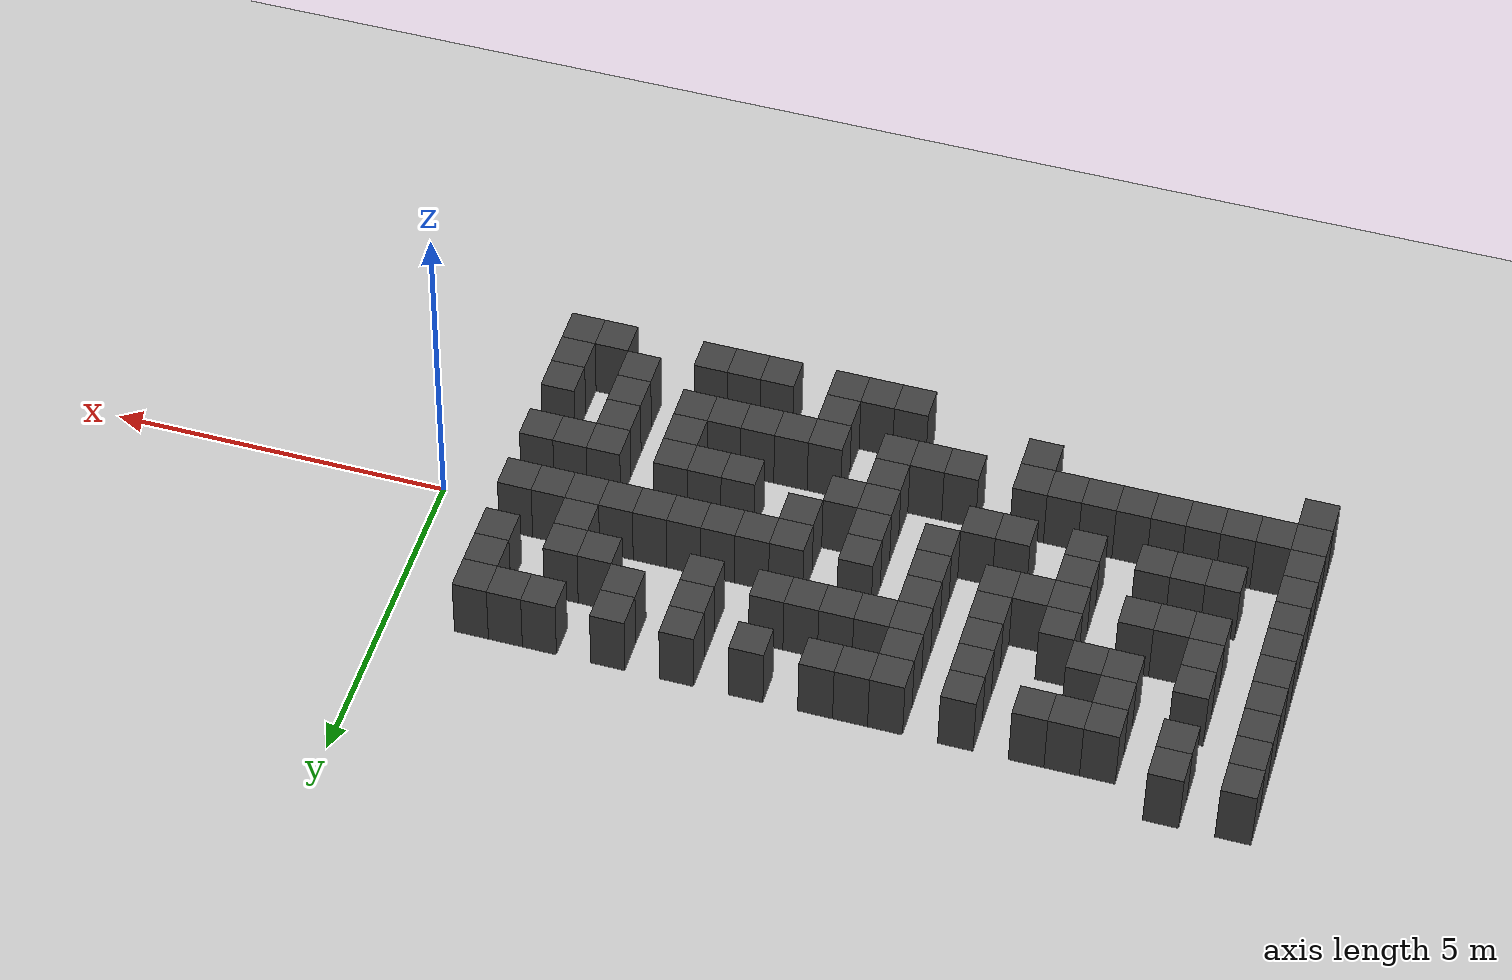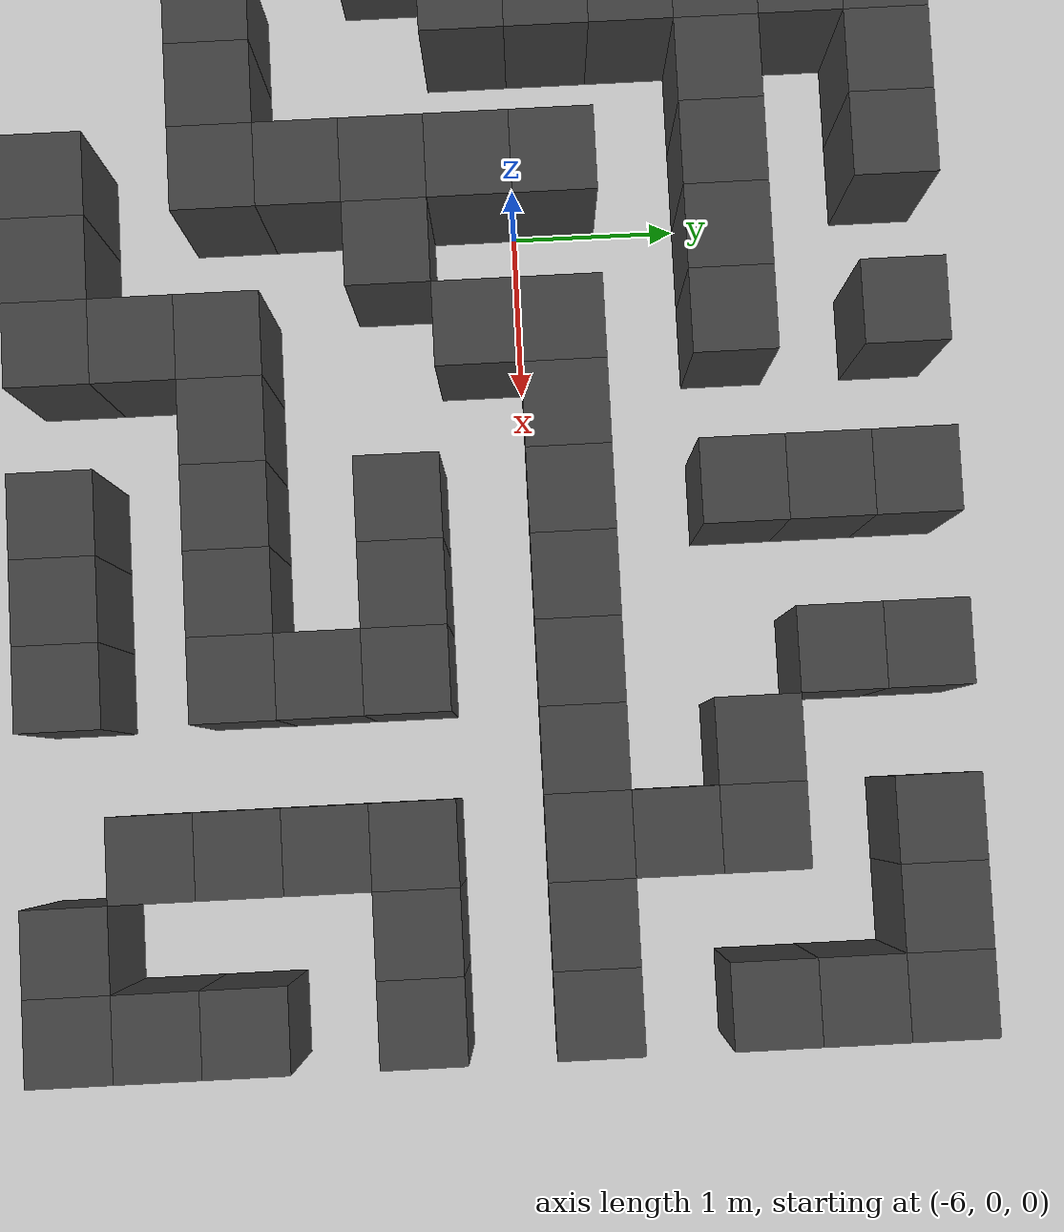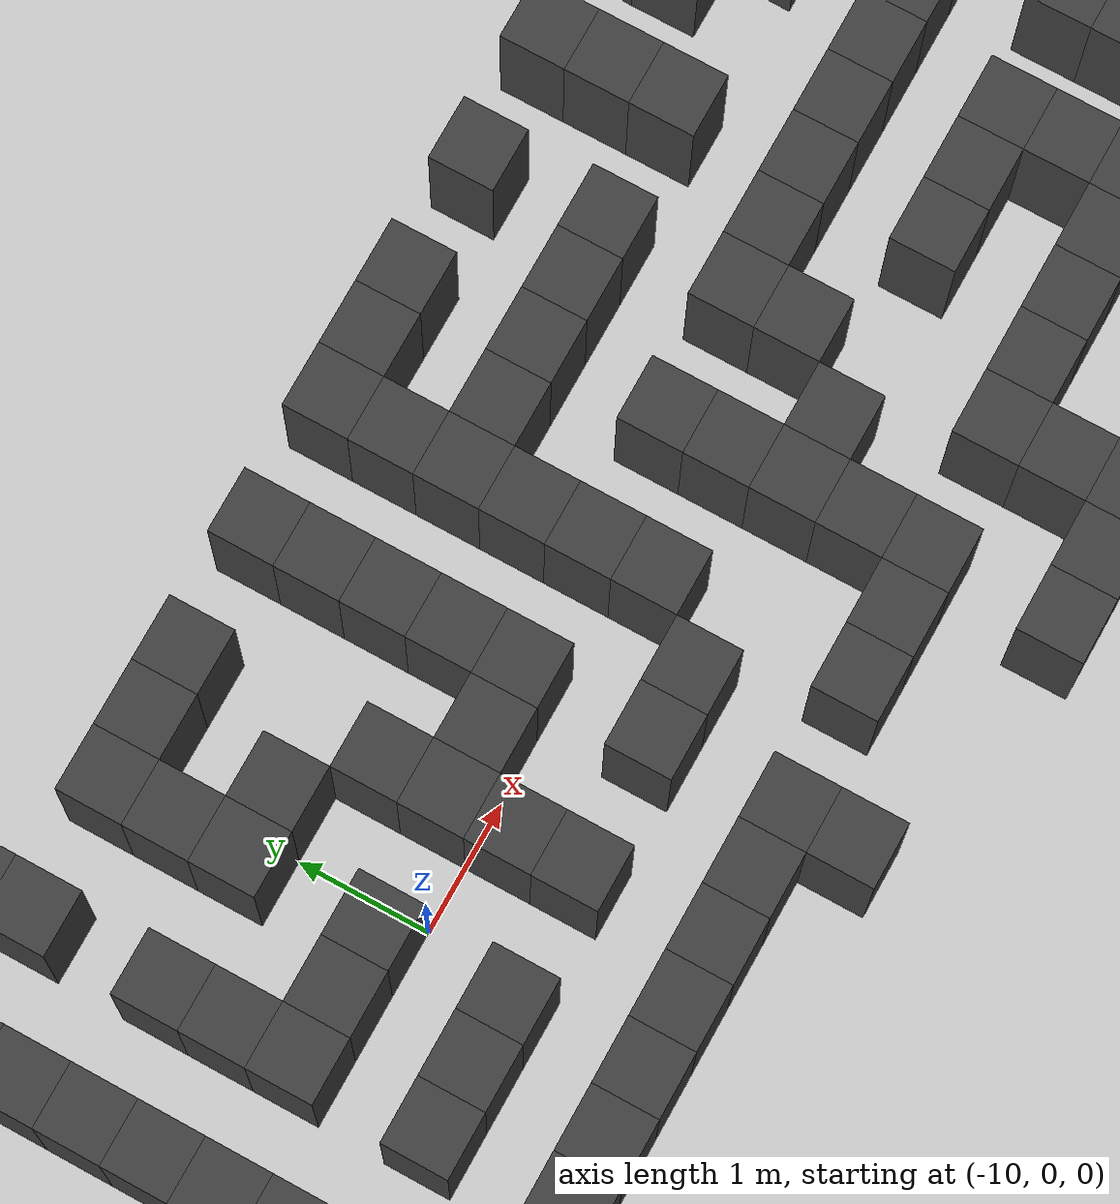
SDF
<sdf version="1.7">
 <world name="map_18313">
  <model name="ground_plane">
   <static>true</static>
   <link name="link">
    <collision name="collision">
     <geometry><plane><normal>0 0 1</normal><size>200 200</size></plane></geometry>
    </collision>
    <visual name="visual">
     <geometry><plane><normal>0 0 1</normal><size>200 200</size></plane></geometry>
     <material><ambient>0.8 0.8 0.8 1</ambient><diffuse>0.8 0.8 0.8 1</diffuse></material>
    </visual>
   </link>
  </model>
  <model name="maze_environment">
   <static>true</static>
   <link name="wall_496">
    <pose>-12.250 2.750 0.500 0 0 0</pose>
    <collision name="col"><geometry><box><size>0.5 0.5 1.0</size></box></geometry></collision>
    <visual name="vis">
     <geometry><box><size>0.5 0.5 1.0</size></box></geometry>
     <material><ambient>0.15 0.15 0.15 1</ambient><diffuse>0.25 0.25 0.25 1</diffuse></material>
    </visual>
   </link>
   <link name="wall_497">
    <pose>-11.250 2.750 0.500 0 0 0</pose>
    <collision name="col"><geometry><box><size>0.5 0.5 1.0</size></box></geometry></collision>
    <visual name="vis">
     <geometry><box><size>0.5 0.5 1.0</size></box></geometry>
     <material><ambient>0.15 0.15 0.15 1</ambient><diffuse>0.25 0.25 0.25 1</diffuse></material>
    </visual>
   </link>
   <link name="wall_512">
    <pose>-12.250 2.250 0.500 0 0 0</pose>
    <collision name="col"><geometry><box><size>0.5 0.5 1.0</size></box></geometry></collision>
    <visual name="vis">
     <geometry><box><size>0.5 0.5 1.0</size></box></geometry>
     <material><ambient>0.15 0.15 0.15 1</ambient><diffuse>0.25 0.25 0.25 1</diffuse></material>
    </visual>
   </link>
   <link name="wall_513">
    <pose>-11.250 2.250 0.500 0 0 0</pose>
    <collision name="col"><geometry><box><size>0.5 0.5 1.0</size></box></geometry></collision>
    <visual name="vis">
     <geometry><box><size>0.5 0.5 1.0</size></box></geometry>
     <material><ambient>0.15 0.15 0.15 1</ambient><diffuse>0.25 0.25 0.25 1</diffuse></material>
    </visual>
   </link>
   <link name="wall_514">
    <pose>-10.250 2.250 0.500 0 0 0</pose>
    <collision name="col"><geometry><box><size>0.5 0.5 1.0</size></box></geometry></collision>
    <visual name="vis">
     <geometry><box><size>0.5 0.5 1.0</size></box></geometry>
     <material><ambient>0.15 0.15 0.15 1</ambient><diffuse>0.25 0.25 0.25 1</diffuse></material>
    </visual>
   </link>
   <link name="wall_515">
    <pose>-9.750 2.250 0.500 0 0 0</pose>
    <collision name="col"><geometry><box><size>0.5 0.5 1.0</size></box></geometry></collision>
    <visual name="vis">
     <geometry><box><size>0.5 0.5 1.0</size></box></geometry>
     <material><ambient>0.15 0.15 0.15 1</ambient><diffuse>0.25 0.25 0.25 1</diffuse></material>
    </visual>
   </link>
   <link name="wall_516">
    <pose>-9.250 2.250 0.500 0 0 0</pose>
    <collision name="col"><geometry><box><size>0.5 0.5 1.0</size></box></geometry></collision>
    <visual name="vis">
     <geometry><box><size>0.5 0.5 1.0</size></box></geometry>
     <material><ambient>0.15 0.15 0.15 1</ambient><diffuse>0.25 0.25 0.25 1</diffuse></material>
    </visual>
   </link>
   <link name="wall_517">
    <pose>-8.250 2.250 0.500 0 0 0</pose>
    <collision name="col"><geometry><box><size>0.5 0.5 1.0</size></box></geometry></collision>
    <visual name="vis">
     <geometry><box><size>0.5 0.5 1.0</size></box></geometry>
     <material><ambient>0.15 0.15 0.15 1</ambient><diffuse>0.25 0.25 0.25 1</diffuse></material>
    </visual>
   </link>
   <link name="wall_518">
    <pose>-7.250 2.250 0.500 0 0 0</pose>
    <collision name="col"><geometry><box><size>0.5 0.5 1.0</size></box></geometry></collision>
    <visual name="vis">
     <geometry><box><size>0.5 0.5 1.0</size></box></geometry>
     <material><ambient>0.15 0.15 0.15 1</ambient><diffuse>0.25 0.25 0.25 1</diffuse></material>
    </visual>
   </link>
   <link name="wall_519">
    <pose>-6.750 2.250 0.500 0 0 0</pose>
    <collision name="col"><geometry><box><size>0.5 0.5 1.0</size></box></geometry></collision>
    <visual name="vis">
     <geometry><box><size>0.5 0.5 1.0</size></box></geometry>
     <material><ambient>0.15 0.15 0.15 1</ambient><diffuse>0.25 0.25 0.25 1</diffuse></material>
    </visual>
   </link>
   <link name="wall_520">
    <pose>-6.250 2.250 0.500 0 0 0</pose>
    <collision name="col"><geometry><box><size>0.5 0.5 1.0</size></box></geometry></collision>
    <visual name="vis">
     <geometry><box><size>0.5 0.5 1.0</size></box></geometry>
     <material><ambient>0.15 0.15 0.15 1</ambient><diffuse>0.25 0.25 0.25 1</diffuse></material>
    </visual>
   </link>
   <link name="wall_521">
    <pose>-5.250 2.250 0.500 0 0 0</pose>
    <collision name="col"><geometry><box><size>0.5 0.5 1.0</size></box></geometry></collision>
    <visual name="vis">
     <geometry><box><size>0.5 0.5 1.0</size></box></geometry>
     <material><ambient>0.15 0.15 0.15 1</ambient><diffuse>0.25 0.25 0.25 1</diffuse></material>
    </visual>
   </link>
   <link name="wall_522">
    <pose>-4.250 2.250 0.500 0 0 0</pose>
    <collision name="col"><geometry><box><size>0.5 0.5 1.0</size></box></geometry></collision>
    <visual name="vis">
     <geometry><box><size>0.5 0.5 1.0</size></box></geometry>
     <material><ambient>0.15 0.15 0.15 1</ambient><diffuse>0.25 0.25 0.25 1</diffuse></material>
    </visual>
   </link>
   <link name="wall_523">
    <pose>-3.250 2.250 0.500 0 0 0</pose>
    <collision name="col"><geometry><box><size>0.5 0.5 1.0</size></box></geometry></collision>
    <visual name="vis">
     <geometry><box><size>0.5 0.5 1.0</size></box></geometry>
     <material><ambient>0.15 0.15 0.15 1</ambient><diffuse>0.25 0.25 0.25 1</diffuse></material>
    </visual>
   </link>
   <link name="wall_524">
    <pose>-2.250 2.250 0.500 0 0 0</pose>
    <collision name="col"><geometry><box><size>0.5 0.5 1.0</size></box></geometry></collision>
    <visual name="vis">
     <geometry><box><size>0.5 0.5 1.0</size></box></geometry>
     <material><ambient>0.15 0.15 0.15 1</ambient><diffuse>0.25 0.25 0.25 1</diffuse></material>
    </visual>
   </link>
   <link name="wall_525">
    <pose>-1.750 2.250 0.500 0 0 0</pose>
    <collision name="col"><geometry><box><size>0.5 0.5 1.0</size></box></geometry></collision>
    <visual name="vis">
     <geometry><box><size>0.5 0.5 1.0</size></box></geometry>
     <material><ambient>0.15 0.15 0.15 1</ambient><diffuse>0.25 0.25 0.25 1</diffuse></material>
    </visual>
   </link>
   <link name="wall_526">
    <pose>-1.250 2.250 0.500 0 0 0</pose>
    <collision name="col"><geometry><box><size>0.5 0.5 1.0</size></box></geometry></collision>
    <visual name="vis">
     <geometry><box><size>0.5 0.5 1.0</size></box></geometry>
     <material><ambient>0.15 0.15 0.15 1</ambient><diffuse>0.25 0.25 0.25 1</diffuse></material>
    </visual>
   </link>
   <link name="wall_545">
    <pose>-12.250 1.750 0.500 0 0 0</pose>
    <collision name="col"><geometry><box><size>0.5 0.5 1.0</size></box></geometry></collision>
    <visual name="vis">
     <geometry><box><size>0.5 0.5 1.0</size></box></geometry>
     <material><ambient>0.15 0.15 0.15 1</ambient><diffuse>0.25 0.25 0.25 1</diffuse></material>
    </visual>
   </link>
   <link name="wall_546">
    <pose>-10.250 1.750 0.500 0 0 0</pose>
    <collision name="col"><geometry><box><size>0.5 0.5 1.0</size></box></geometry></collision>
    <visual name="vis">
     <geometry><box><size>0.5 0.5 1.0</size></box></geometry>
     <material><ambient>0.15 0.15 0.15 1</ambient><diffuse>0.25 0.25 0.25 1</diffuse></material>
    </visual>
   </link>
   <link name="wall_547">
    <pose>-8.250 1.750 0.500 0 0 0</pose>
    <collision name="col"><geometry><box><size>0.5 0.5 1.0</size></box></geometry></collision>
    <visual name="vis">
     <geometry><box><size>0.5 0.5 1.0</size></box></geometry>
     <material><ambient>0.15 0.15 0.15 1</ambient><diffuse>0.25 0.25 0.25 1</diffuse></material>
    </visual>
   </link>
   <link name="wall_548">
    <pose>-7.250 1.750 0.500 0 0 0</pose>
    <collision name="col"><geometry><box><size>0.5 0.5 1.0</size></box></geometry></collision>
    <visual name="vis">
     <geometry><box><size>0.5 0.5 1.0</size></box></geometry>
     <material><ambient>0.15 0.15 0.15 1</ambient><diffuse>0.25 0.25 0.25 1</diffuse></material>
    </visual>
   </link>
   <link name="wall_549">
    <pose>-4.250 1.750 0.500 0 0 0</pose>
    <collision name="col"><geometry><box><size>0.5 0.5 1.0</size></box></geometry></collision>
    <visual name="vis">
     <geometry><box><size>0.5 0.5 1.0</size></box></geometry>
     <material><ambient>0.15 0.15 0.15 1</ambient><diffuse>0.25 0.25 0.25 1</diffuse></material>
    </visual>
   </link>
   <link name="wall_550">
    <pose>-3.250 1.750 0.500 0 0 0</pose>
    <collision name="col"><geometry><box><size>0.5 0.5 1.0</size></box></geometry></collision>
    <visual name="vis">
     <geometry><box><size>0.5 0.5 1.0</size></box></geometry>
     <material><ambient>0.15 0.15 0.15 1</ambient><diffuse>0.25 0.25 0.25 1</diffuse></material>
    </visual>
   </link>
   <link name="wall_551">
    <pose>-1.250 1.750 0.500 0 0 0</pose>
    <collision name="col"><geometry><box><size>0.5 0.5 1.0</size></box></geometry></collision>
    <visual name="vis">
     <geometry><box><size>0.5 0.5 1.0</size></box></geometry>
     <material><ambient>0.15 0.15 0.15 1</ambient><diffuse>0.25 0.25 0.25 1</diffuse></material>
    </visual>
   </link>
   <link name="wall_559">
    <pose>-12.250 1.250 0.500 0 0 0</pose>
    <collision name="col"><geometry><box><size>0.5 0.5 1.0</size></box></geometry></collision>
    <visual name="vis">
     <geometry><box><size>0.5 0.5 1.0</size></box></geometry>
     <material><ambient>0.15 0.15 0.15 1</ambient><diffuse>0.25 0.25 0.25 1</diffuse></material>
    </visual>
   </link>
   <link name="wall_560">
    <pose>-11.250 1.250 0.500 0 0 0</pose>
    <collision name="col"><geometry><box><size>0.5 0.5 1.0</size></box></geometry></collision>
    <visual name="vis">
     <geometry><box><size>0.5 0.5 1.0</size></box></geometry>
     <material><ambient>0.15 0.15 0.15 1</ambient><diffuse>0.25 0.25 0.25 1</diffuse></material>
    </visual>
   </link>
   <link name="wall_561">
    <pose>-10.250 1.250 0.500 0 0 0</pose>
    <collision name="col"><geometry><box><size>0.5 0.5 1.0</size></box></geometry></collision>
    <visual name="vis">
     <geometry><box><size>0.5 0.5 1.0</size></box></geometry>
     <material><ambient>0.15 0.15 0.15 1</ambient><diffuse>0.25 0.25 0.25 1</diffuse></material>
    </visual>
   </link>
   <link name="wall_562">
    <pose>-9.750 1.250 0.500 0 0 0</pose>
    <collision name="col"><geometry><box><size>0.5 0.5 1.0</size></box></geometry></collision>
    <visual name="vis">
     <geometry><box><size>0.5 0.5 1.0</size></box></geometry>
     <material><ambient>0.15 0.15 0.15 1</ambient><diffuse>0.25 0.25 0.25 1</diffuse></material>
    </visual>
   </link>
   <link name="wall_563">
    <pose>-8.250 1.250 0.500 0 0 0</pose>
    <collision name="col"><geometry><box><size>0.5 0.5 1.0</size></box></geometry></collision>
    <visual name="vis">
     <geometry><box><size>0.5 0.5 1.0</size></box></geometry>
     <material><ambient>0.15 0.15 0.15 1</ambient><diffuse>0.25 0.25 0.25 1</diffuse></material>
    </visual>
   </link>
   <link name="wall_564">
    <pose>-7.250 1.250 0.500 0 0 0</pose>
    <collision name="col"><geometry><box><size>0.5 0.5 1.0</size></box></geometry></collision>
    <visual name="vis">
     <geometry><box><size>0.5 0.5 1.0</size></box></geometry>
     <material><ambient>0.15 0.15 0.15 1</ambient><diffuse>0.25 0.25 0.25 1</diffuse></material>
    </visual>
   </link>
   <link name="wall_565">
    <pose>-6.750 1.250 0.500 0 0 0</pose>
    <collision name="col"><geometry><box><size>0.5 0.5 1.0</size></box></geometry></collision>
    <visual name="vis">
     <geometry><box><size>0.5 0.5 1.0</size></box></geometry>
     <material><ambient>0.15 0.15 0.15 1</ambient><diffuse>0.25 0.25 0.25 1</diffuse></material>
    </visual>
   </link>
   <link name="wall_566">
    <pose>-6.250 1.250 0.500 0 0 0</pose>
    <collision name="col"><geometry><box><size>0.5 0.5 1.0</size></box></geometry></collision>
    <visual name="vis">
     <geometry><box><size>0.5 0.5 1.0</size></box></geometry>
     <material><ambient>0.15 0.15 0.15 1</ambient><diffuse>0.25 0.25 0.25 1</diffuse></material>
    </visual>
   </link>
   <link name="wall_567">
    <pose>-5.750 1.250 0.500 0 0 0</pose>
    <collision name="col"><geometry><box><size>0.5 0.5 1.0</size></box></geometry></collision>
    <visual name="vis">
     <geometry><box><size>0.5 0.5 1.0</size></box></geometry>
     <material><ambient>0.15 0.15 0.15 1</ambient><diffuse>0.25 0.25 0.25 1</diffuse></material>
    </visual>
   </link>
   <link name="wall_568">
    <pose>-5.250 1.250 0.500 0 0 0</pose>
    <collision name="col"><geometry><box><size>0.5 0.5 1.0</size></box></geometry></collision>
    <visual name="vis">
     <geometry><box><size>0.5 0.5 1.0</size></box></geometry>
     <material><ambient>0.15 0.15 0.15 1</ambient><diffuse>0.25 0.25 0.25 1</diffuse></material>
    </visual>
   </link>
   <link name="wall_569">
    <pose>-4.250 1.250 0.500 0 0 0</pose>
    <collision name="col"><geometry><box><size>0.5 0.5 1.0</size></box></geometry></collision>
    <visual name="vis">
     <geometry><box><size>0.5 0.5 1.0</size></box></geometry>
     <material><ambient>0.15 0.15 0.15 1</ambient><diffuse>0.25 0.25 0.25 1</diffuse></material>
    </visual>
   </link>
   <link name="wall_570">
    <pose>-2.750 1.250 0.500 0 0 0</pose>
    <collision name="col"><geometry><box><size>0.5 0.5 1.0</size></box></geometry></collision>
    <visual name="vis">
     <geometry><box><size>0.5 0.5 1.0</size></box></geometry>
     <material><ambient>0.15 0.15 0.15 1</ambient><diffuse>0.25 0.25 0.25 1</diffuse></material>
    </visual>
   </link>
   <link name="wall_571">
    <pose>-2.250 1.250 0.500 0 0 0</pose>
    <collision name="col"><geometry><box><size>0.5 0.5 1.0</size></box></geometry></collision>
    <visual name="vis">
     <geometry><box><size>0.5 0.5 1.0</size></box></geometry>
     <material><ambient>0.15 0.15 0.15 1</ambient><diffuse>0.25 0.25 0.25 1</diffuse></material>
    </visual>
   </link>
   <link name="wall_572">
    <pose>-1.250 1.250 0.500 0 0 0</pose>
    <collision name="col"><geometry><box><size>0.5 0.5 1.0</size></box></geometry></collision>
    <visual name="vis">
     <geometry><box><size>0.5 0.5 1.0</size></box></geometry>
     <material><ambient>0.15 0.15 0.15 1</ambient><diffuse>0.25 0.25 0.25 1</diffuse></material>
    </visual>
   </link>
   <link name="wall_594">
    <pose>-12.250 0.750 0.500 0 0 0</pose>
    <collision name="col"><geometry><box><size>0.5 0.5 1.0</size></box></geometry></collision>
    <visual name="vis">
     <geometry><box><size>0.5 0.5 1.0</size></box></geometry>
     <material><ambient>0.15 0.15 0.15 1</ambient><diffuse>0.25 0.25 0.25 1</diffuse></material>
    </visual>
   </link>
   <link name="wall_595">
    <pose>-11.250 0.750 0.500 0 0 0</pose>
    <collision name="col"><geometry><box><size>0.5 0.5 1.0</size></box></geometry></collision>
    <visual name="vis">
     <geometry><box><size>0.5 0.5 1.0</size></box></geometry>
     <material><ambient>0.15 0.15 0.15 1</ambient><diffuse>0.25 0.25 0.25 1</diffuse></material>
    </visual>
   </link>
   <link name="wall_596">
    <pose>-9.250 0.750 0.500 0 0 0</pose>
    <collision name="col"><geometry><box><size>0.5 0.5 1.0</size></box></geometry></collision>
    <visual name="vis">
     <geometry><box><size>0.5 0.5 1.0</size></box></geometry>
     <material><ambient>0.15 0.15 0.15 1</ambient><diffuse>0.25 0.25 0.25 1</diffuse></material>
    </visual>
   </link>
   <link name="wall_597">
    <pose>-8.250 0.750 0.500 0 0 0</pose>
    <collision name="col"><geometry><box><size>0.5 0.5 1.0</size></box></geometry></collision>
    <visual name="vis">
     <geometry><box><size>0.5 0.5 1.0</size></box></geometry>
     <material><ambient>0.15 0.15 0.15 1</ambient><diffuse>0.25 0.25 0.25 1</diffuse></material>
    </visual>
   </link>
   <link name="wall_598">
    <pose>-7.250 0.750 0.500 0 0 0</pose>
    <collision name="col"><geometry><box><size>0.5 0.5 1.0</size></box></geometry></collision>
    <visual name="vis">
     <geometry><box><size>0.5 0.5 1.0</size></box></geometry>
     <material><ambient>0.15 0.15 0.15 1</ambient><diffuse>0.25 0.25 0.25 1</diffuse></material>
    </visual>
   </link>
   <link name="wall_599">
    <pose>-2.250 0.750 0.500 0 0 0</pose>
    <collision name="col"><geometry><box><size>0.5 0.5 1.0</size></box></geometry></collision>
    <visual name="vis">
     <geometry><box><size>0.5 0.5 1.0</size></box></geometry>
     <material><ambient>0.15 0.15 0.15 1</ambient><diffuse>0.25 0.25 0.25 1</diffuse></material>
    </visual>
   </link>
   <link name="wall_608">
    <pose>-12.250 0.250 0.500 0 0 0</pose>
    <collision name="col"><geometry><box><size>0.5 0.5 1.0</size></box></geometry></collision>
    <visual name="vis">
     <geometry><box><size>0.5 0.5 1.0</size></box></geometry>
     <material><ambient>0.15 0.15 0.15 1</ambient><diffuse>0.25 0.25 0.25 1</diffuse></material>
    </visual>
   </link>
   <link name="wall_609">
    <pose>-11.250 0.250 0.500 0 0 0</pose>
    <collision name="col"><geometry><box><size>0.5 0.5 1.0</size></box></geometry></collision>
    <visual name="vis">
     <geometry><box><size>0.5 0.5 1.0</size></box></geometry>
     <material><ambient>0.15 0.15 0.15 1</ambient><diffuse>0.25 0.25 0.25 1</diffuse></material>
    </visual>
   </link>
   <link name="wall_610">
    <pose>-10.750 0.250 0.500 0 0 0</pose>
    <collision name="col"><geometry><box><size>0.5 0.5 1.0</size></box></geometry></collision>
    <visual name="vis">
     <geometry><box><size>0.5 0.5 1.0</size></box></geometry>
     <material><ambient>0.15 0.15 0.15 1</ambient><diffuse>0.25 0.25 0.25 1</diffuse></material>
    </visual>
   </link>
   <link name="wall_611">
    <pose>-10.250 0.250 0.500 0 0 0</pose>
    <collision name="col"><geometry><box><size>0.5 0.5 1.0</size></box></geometry></collision>
    <visual name="vis">
     <geometry><box><size>0.5 0.5 1.0</size></box></geometry>
     <material><ambient>0.15 0.15 0.15 1</ambient><diffuse>0.25 0.25 0.25 1</diffuse></material>
    </visual>
   </link>
   <link name="wall_612">
    <pose>-9.250 0.250 0.500 0 0 0</pose>
    <collision name="col"><geometry><box><size>0.5 0.5 1.0</size></box></geometry></collision>
    <visual name="vis">
     <geometry><box><size>0.5 0.5 1.0</size></box></geometry>
     <material><ambient>0.15 0.15 0.15 1</ambient><diffuse>0.25 0.25 0.25 1</diffuse></material>
    </visual>
   </link>
   <link name="wall_613">
    <pose>-8.750 0.250 0.500 0 0 0</pose>
    <collision name="col"><geometry><box><size>0.5 0.5 1.0</size></box></geometry></collision>
    <visual name="vis">
     <geometry><box><size>0.5 0.5 1.0</size></box></geometry>
     <material><ambient>0.15 0.15 0.15 1</ambient><diffuse>0.25 0.25 0.25 1</diffuse></material>
    </visual>
   </link>
   <link name="wall_614">
    <pose>-8.250 0.250 0.500 0 0 0</pose>
    <collision name="col"><geometry><box><size>0.5 0.5 1.0</size></box></geometry></collision>
    <visual name="vis">
     <geometry><box><size>0.5 0.5 1.0</size></box></geometry>
     <material><ambient>0.15 0.15 0.15 1</ambient><diffuse>0.25 0.25 0.25 1</diffuse></material>
    </visual>
   </link>
   <link name="wall_615">
    <pose>-7.250 0.250 0.500 0 0 0</pose>
    <collision name="col"><geometry><box><size>0.5 0.5 1.0</size></box></geometry></collision>
    <visual name="vis">
     <geometry><box><size>0.5 0.5 1.0</size></box></geometry>
     <material><ambient>0.15 0.15 0.15 1</ambient><diffuse>0.25 0.25 0.25 1</diffuse></material>
    </visual>
   </link>
   <link name="wall_616">
    <pose>-6.250 0.250 0.500 0 0 0</pose>
    <collision name="col"><geometry><box><size>0.5 0.5 1.0</size></box></geometry></collision>
    <visual name="vis">
     <geometry><box><size>0.5 0.5 1.0</size></box></geometry>
     <material><ambient>0.15 0.15 0.15 1</ambient><diffuse>0.25 0.25 0.25 1</diffuse></material>
    </visual>
   </link>
   <link name="wall_617">
    <pose>-5.250 0.250 0.500 0 0 0</pose>
    <collision name="col"><geometry><box><size>0.5 0.5 1.0</size></box></geometry></collision>
    <visual name="vis">
     <geometry><box><size>0.5 0.5 1.0</size></box></geometry>
     <material><ambient>0.15 0.15 0.15 1</ambient><diffuse>0.25 0.25 0.25 1</diffuse></material>
    </visual>
   </link>
   <link name="wall_618">
    <pose>-4.750 0.250 0.500 0 0 0</pose>
    <collision name="col"><geometry><box><size>0.5 0.5 1.0</size></box></geometry></collision>
    <visual name="vis">
     <geometry><box><size>0.5 0.5 1.0</size></box></geometry>
     <material><ambient>0.15 0.15 0.15 1</ambient><diffuse>0.25 0.25 0.25 1</diffuse></material>
    </visual>
   </link>
   <link name="wall_619">
    <pose>-4.250 0.250 0.500 0 0 0</pose>
    <collision name="col"><geometry><box><size>0.5 0.5 1.0</size></box></geometry></collision>
    <visual name="vis">
     <geometry><box><size>0.5 0.5 1.0</size></box></geometry>
     <material><ambient>0.15 0.15 0.15 1</ambient><diffuse>0.25 0.25 0.25 1</diffuse></material>
    </visual>
   </link>
   <link name="wall_620">
    <pose>-3.750 0.250 0.500 0 0 0</pose>
    <collision name="col"><geometry><box><size>0.5 0.5 1.0</size></box></geometry></collision>
    <visual name="vis">
     <geometry><box><size>0.5 0.5 1.0</size></box></geometry>
     <material><ambient>0.15 0.15 0.15 1</ambient><diffuse>0.25 0.25 0.25 1</diffuse></material>
    </visual>
   </link>
   <link name="wall_621">
    <pose>-3.250 0.250 0.500 0 0 0</pose>
    <collision name="col"><geometry><box><size>0.5 0.5 1.0</size></box></geometry></collision>
    <visual name="vis">
     <geometry><box><size>0.5 0.5 1.0</size></box></geometry>
     <material><ambient>0.15 0.15 0.15 1</ambient><diffuse>0.25 0.25 0.25 1</diffuse></material>
    </visual>
   </link>
   <link name="wall_622">
    <pose>-2.750 0.250 0.500 0 0 0</pose>
    <collision name="col"><geometry><box><size>0.5 0.5 1.0</size></box></geometry></collision>
    <visual name="vis">
     <geometry><box><size>0.5 0.5 1.0</size></box></geometry>
     <material><ambient>0.15 0.15 0.15 1</ambient><diffuse>0.25 0.25 0.25 1</diffuse></material>
    </visual>
   </link>
   <link name="wall_623">
    <pose>-2.250 0.250 0.500 0 0 0</pose>
    <collision name="col"><geometry><box><size>0.5 0.5 1.0</size></box></geometry></collision>
    <visual name="vis">
     <geometry><box><size>0.5 0.5 1.0</size></box></geometry>
     <material><ambient>0.15 0.15 0.15 1</ambient><diffuse>0.25 0.25 0.25 1</diffuse></material>
    </visual>
   </link>
   <link name="wall_624">
    <pose>-1.750 0.250 0.500 0 0 0</pose>
    <collision name="col"><geometry><box><size>0.5 0.5 1.0</size></box></geometry></collision>
    <visual name="vis">
     <geometry><box><size>0.5 0.5 1.0</size></box></geometry>
     <material><ambient>0.15 0.15 0.15 1</ambient><diffuse>0.25 0.25 0.25 1</diffuse></material>
    </visual>
   </link>
   <link name="wall_625">
    <pose>-1.250 0.250 0.500 0 0 0</pose>
    <collision name="col"><geometry><box><size>0.5 0.5 1.0</size></box></geometry></collision>
    <visual name="vis">
     <geometry><box><size>0.5 0.5 1.0</size></box></geometry>
     <material><ambient>0.15 0.15 0.15 1</ambient><diffuse>0.25 0.25 0.25 1</diffuse></material>
    </visual>
   </link>
   <link name="wall_644">
    <pose>-12.250 -0.250 0.500 0 0 0</pose>
    <collision name="col"><geometry><box><size>0.5 0.5 1.0</size></box></geometry></collision>
    <visual name="vis">
     <geometry><box><size>0.5 0.5 1.0</size></box></geometry>
     <material><ambient>0.15 0.15 0.15 1</ambient><diffuse>0.25 0.25 0.25 1</diffuse></material>
    </visual>
   </link>
   <link name="wall_645">
    <pose>-9.250 -0.250 0.500 0 0 0</pose>
    <collision name="col"><geometry><box><size>0.5 0.5 1.0</size></box></geometry></collision>
    <visual name="vis">
     <geometry><box><size>0.5 0.5 1.0</size></box></geometry>
     <material><ambient>0.15 0.15 0.15 1</ambient><diffuse>0.25 0.25 0.25 1</diffuse></material>
    </visual>
   </link>
   <link name="wall_646">
    <pose>-7.250 -0.250 0.500 0 0 0</pose>
    <collision name="col"><geometry><box><size>0.5 0.5 1.0</size></box></geometry></collision>
    <visual name="vis">
     <geometry><box><size>0.5 0.5 1.0</size></box></geometry>
     <material><ambient>0.15 0.15 0.15 1</ambient><diffuse>0.25 0.25 0.25 1</diffuse></material>
    </visual>
   </link>
   <link name="wall_647">
    <pose>-6.250 -0.250 0.500 0 0 0</pose>
    <collision name="col"><geometry><box><size>0.5 0.5 1.0</size></box></geometry></collision>
    <visual name="vis">
     <geometry><box><size>0.5 0.5 1.0</size></box></geometry>
     <material><ambient>0.15 0.15 0.15 1</ambient><diffuse>0.25 0.25 0.25 1</diffuse></material>
    </visual>
   </link>
   <link name="wall_648">
    <pose>-5.250 -0.250 0.500 0 0 0</pose>
    <collision name="col"><geometry><box><size>0.5 0.5 1.0</size></box></geometry></collision>
    <visual name="vis">
     <geometry><box><size>0.5 0.5 1.0</size></box></geometry>
     <material><ambient>0.15 0.15 0.15 1</ambient><diffuse>0.25 0.25 0.25 1</diffuse></material>
    </visual>
   </link>
   <link name="wall_656">
    <pose>-12.250 -0.750 0.500 0 0 0</pose>
    <collision name="col"><geometry><box><size>0.5 0.5 1.0</size></box></geometry></collision>
    <visual name="vis">
     <geometry><box><size>0.5 0.5 1.0</size></box></geometry>
     <material><ambient>0.15 0.15 0.15 1</ambient><diffuse>0.25 0.25 0.25 1</diffuse></material>
    </visual>
   </link>
   <link name="wall_657">
    <pose>-11.250 -0.750 0.500 0 0 0</pose>
    <collision name="col"><geometry><box><size>0.5 0.5 1.0</size></box></geometry></collision>
    <visual name="vis">
     <geometry><box><size>0.5 0.5 1.0</size></box></geometry>
     <material><ambient>0.15 0.15 0.15 1</ambient><diffuse>0.25 0.25 0.25 1</diffuse></material>
    </visual>
   </link>
   <link name="wall_658">
    <pose>-10.750 -0.750 0.500 0 0 0</pose>
    <collision name="col"><geometry><box><size>0.5 0.5 1.0</size></box></geometry></collision>
    <visual name="vis">
     <geometry><box><size>0.5 0.5 1.0</size></box></geometry>
     <material><ambient>0.15 0.15 0.15 1</ambient><diffuse>0.25 0.25 0.25 1</diffuse></material>
    </visual>
   </link>
   <link name="wall_659">
    <pose>-10.250 -0.750 0.500 0 0 0</pose>
    <collision name="col"><geometry><box><size>0.5 0.5 1.0</size></box></geometry></collision>
    <visual name="vis">
     <geometry><box><size>0.5 0.5 1.0</size></box></geometry>
     <material><ambient>0.15 0.15 0.15 1</ambient><diffuse>0.25 0.25 0.25 1</diffuse></material>
    </visual>
   </link>
   <link name="wall_660">
    <pose>-9.250 -0.750 0.500 0 0 0</pose>
    <collision name="col"><geometry><box><size>0.5 0.5 1.0</size></box></geometry></collision>
    <visual name="vis">
     <geometry><box><size>0.5 0.5 1.0</size></box></geometry>
     <material><ambient>0.15 0.15 0.15 1</ambient><diffuse>0.25 0.25 0.25 1</diffuse></material>
    </visual>
   </link>
   <link name="wall_661">
    <pose>-8.250 -0.750 0.500 0 0 0</pose>
    <collision name="col"><geometry><box><size>0.5 0.5 1.0</size></box></geometry></collision>
    <visual name="vis">
     <geometry><box><size>0.5 0.5 1.0</size></box></geometry>
     <material><ambient>0.15 0.15 0.15 1</ambient><diffuse>0.25 0.25 0.25 1</diffuse></material>
    </visual>
   </link>
   <link name="wall_662">
    <pose>-7.750 -0.750 0.500 0 0 0</pose>
    <collision name="col"><geometry><box><size>0.5 0.5 1.0</size></box></geometry></collision>
    <visual name="vis">
     <geometry><box><size>0.5 0.5 1.0</size></box></geometry>
     <material><ambient>0.15 0.15 0.15 1</ambient><diffuse>0.25 0.25 0.25 1</diffuse></material>
    </visual>
   </link>
   <link name="wall_663">
    <pose>-6.250 -0.750 0.500 0 0 0</pose>
    <collision name="col"><geometry><box><size>0.5 0.5 1.0</size></box></geometry></collision>
    <visual name="vis">
     <geometry><box><size>0.5 0.5 1.0</size></box></geometry>
     <material><ambient>0.15 0.15 0.15 1</ambient><diffuse>0.25 0.25 0.25 1</diffuse></material>
    </visual>
   </link>
   <link name="wall_664">
    <pose>-5.750 -0.750 0.500 0 0 0</pose>
    <collision name="col"><geometry><box><size>0.5 0.5 1.0</size></box></geometry></collision>
    <visual name="vis">
     <geometry><box><size>0.5 0.5 1.0</size></box></geometry>
     <material><ambient>0.15 0.15 0.15 1</ambient><diffuse>0.25 0.25 0.25 1</diffuse></material>
    </visual>
   </link>
   <link name="wall_665">
    <pose>-4.250 -0.750 0.500 0 0 0</pose>
    <collision name="col"><geometry><box><size>0.5 0.5 1.0</size></box></geometry></collision>
    <visual name="vis">
     <geometry><box><size>0.5 0.5 1.0</size></box></geometry>
     <material><ambient>0.15 0.15 0.15 1</ambient><diffuse>0.25 0.25 0.25 1</diffuse></material>
    </visual>
   </link>
   <link name="wall_666">
    <pose>-3.750 -0.750 0.500 0 0 0</pose>
    <collision name="col"><geometry><box><size>0.5 0.5 1.0</size></box></geometry></collision>
    <visual name="vis">
     <geometry><box><size>0.5 0.5 1.0</size></box></geometry>
     <material><ambient>0.15 0.15 0.15 1</ambient><diffuse>0.25 0.25 0.25 1</diffuse></material>
    </visual>
   </link>
   <link name="wall_667">
    <pose>-3.250 -0.750 0.500 0 0 0</pose>
    <collision name="col"><geometry><box><size>0.5 0.5 1.0</size></box></geometry></collision>
    <visual name="vis">
     <geometry><box><size>0.5 0.5 1.0</size></box></geometry>
     <material><ambient>0.15 0.15 0.15 1</ambient><diffuse>0.25 0.25 0.25 1</diffuse></material>
    </visual>
   </link>
   <link name="wall_668">
    <pose>-2.250 -0.750 0.500 0 0 0</pose>
    <collision name="col"><geometry><box><size>0.5 0.5 1.0</size></box></geometry></collision>
    <visual name="vis">
     <geometry><box><size>0.5 0.5 1.0</size></box></geometry>
     <material><ambient>0.15 0.15 0.15 1</ambient><diffuse>0.25 0.25 0.25 1</diffuse></material>
    </visual>
   </link>
   <link name="wall_669">
    <pose>-1.750 -0.750 0.500 0 0 0</pose>
    <collision name="col"><geometry><box><size>0.5 0.5 1.0</size></box></geometry></collision>
    <visual name="vis">
     <geometry><box><size>0.5 0.5 1.0</size></box></geometry>
     <material><ambient>0.15 0.15 0.15 1</ambient><diffuse>0.25 0.25 0.25 1</diffuse></material>
    </visual>
   </link>
   <link name="wall_670">
    <pose>-1.250 -0.750 0.500 0 0 0</pose>
    <collision name="col"><geometry><box><size>0.5 0.5 1.0</size></box></geometry></collision>
    <visual name="vis">
     <geometry><box><size>0.5 0.5 1.0</size></box></geometry>
     <material><ambient>0.15 0.15 0.15 1</ambient><diffuse>0.25 0.25 0.25 1</diffuse></material>
    </visual>
   </link>
   <link name="wall_693">
    <pose>-12.250 -1.250 0.500 0 0 0</pose>
    <collision name="col"><geometry><box><size>0.5 0.5 1.0</size></box></geometry></collision>
    <visual name="vis">
     <geometry><box><size>0.5 0.5 1.0</size></box></geometry>
     <material><ambient>0.15 0.15 0.15 1</ambient><diffuse>0.25 0.25 0.25 1</diffuse></material>
    </visual>
   </link>
   <link name="wall_694">
    <pose>-6.250 -1.250 0.500 0 0 0</pose>
    <collision name="col"><geometry><box><size>0.5 0.5 1.0</size></box></geometry></collision>
    <visual name="vis">
     <geometry><box><size>0.5 0.5 1.0</size></box></geometry>
     <material><ambient>0.15 0.15 0.15 1</ambient><diffuse>0.25 0.25 0.25 1</diffuse></material>
    </visual>
   </link>
   <link name="wall_695">
    <pose>-3.250 -1.250 0.500 0 0 0</pose>
    <collision name="col"><geometry><box><size>0.5 0.5 1.0</size></box></geometry></collision>
    <visual name="vis">
     <geometry><box><size>0.5 0.5 1.0</size></box></geometry>
     <material><ambient>0.15 0.15 0.15 1</ambient><diffuse>0.25 0.25 0.25 1</diffuse></material>
    </visual>
   </link>
   <link name="wall_696">
    <pose>-2.250 -1.250 0.500 0 0 0</pose>
    <collision name="col"><geometry><box><size>0.5 0.5 1.0</size></box></geometry></collision>
    <visual name="vis">
     <geometry><box><size>0.5 0.5 1.0</size></box></geometry>
     <material><ambient>0.15 0.15 0.15 1</ambient><diffuse>0.25 0.25 0.25 1</diffuse></material>
    </visual>
   </link>
   <link name="wall_705">
    <pose>-12.250 -1.750 0.500 0 0 0</pose>
    <collision name="col"><geometry><box><size>0.5 0.5 1.0</size></box></geometry></collision>
    <visual name="vis">
     <geometry><box><size>0.5 0.5 1.0</size></box></geometry>
     <material><ambient>0.15 0.15 0.15 1</ambient><diffuse>0.25 0.25 0.25 1</diffuse></material>
    </visual>
   </link>
   <link name="wall_706">
    <pose>-11.750 -1.750 0.500 0 0 0</pose>
    <collision name="col"><geometry><box><size>0.5 0.5 1.0</size></box></geometry></collision>
    <visual name="vis">
     <geometry><box><size>0.5 0.5 1.0</size></box></geometry>
     <material><ambient>0.15 0.15 0.15 1</ambient><diffuse>0.25 0.25 0.25 1</diffuse></material>
    </visual>
   </link>
   <link name="wall_707">
    <pose>-11.250 -1.750 0.500 0 0 0</pose>
    <collision name="col"><geometry><box><size>0.5 0.5 1.0</size></box></geometry></collision>
    <visual name="vis">
     <geometry><box><size>0.5 0.5 1.0</size></box></geometry>
     <material><ambient>0.15 0.15 0.15 1</ambient><diffuse>0.25 0.25 0.25 1</diffuse></material>
    </visual>
   </link>
   <link name="wall_708">
    <pose>-10.750 -1.750 0.500 0 0 0</pose>
    <collision name="col"><geometry><box><size>0.5 0.5 1.0</size></box></geometry></collision>
    <visual name="vis">
     <geometry><box><size>0.5 0.5 1.0</size></box></geometry>
     <material><ambient>0.15 0.15 0.15 1</ambient><diffuse>0.25 0.25 0.25 1</diffuse></material>
    </visual>
   </link>
   <link name="wall_709">
    <pose>-10.250 -1.750 0.500 0 0 0</pose>
    <collision name="col"><geometry><box><size>0.5 0.5 1.0</size></box></geometry></collision>
    <visual name="vis">
     <geometry><box><size>0.5 0.5 1.0</size></box></geometry>
     <material><ambient>0.15 0.15 0.15 1</ambient><diffuse>0.25 0.25 0.25 1</diffuse></material>
    </visual>
   </link>
   <link name="wall_710">
    <pose>-9.750 -1.750 0.500 0 0 0</pose>
    <collision name="col"><geometry><box><size>0.5 0.5 1.0</size></box></geometry></collision>
    <visual name="vis">
     <geometry><box><size>0.5 0.5 1.0</size></box></geometry>
     <material><ambient>0.15 0.15 0.15 1</ambient><diffuse>0.25 0.25 0.25 1</diffuse></material>
    </visual>
   </link>
   <link name="wall_711">
    <pose>-9.250 -1.750 0.500 0 0 0</pose>
    <collision name="col"><geometry><box><size>0.5 0.5 1.0</size></box></geometry></collision>
    <visual name="vis">
     <geometry><box><size>0.5 0.5 1.0</size></box></geometry>
     <material><ambient>0.15 0.15 0.15 1</ambient><diffuse>0.25 0.25 0.25 1</diffuse></material>
    </visual>
   </link>
   <link name="wall_712">
    <pose>-8.750 -1.750 0.500 0 0 0</pose>
    <collision name="col"><geometry><box><size>0.5 0.5 1.0</size></box></geometry></collision>
    <visual name="vis">
     <geometry><box><size>0.5 0.5 1.0</size></box></geometry>
     <material><ambient>0.15 0.15 0.15 1</ambient><diffuse>0.25 0.25 0.25 1</diffuse></material>
    </visual>
   </link>
   <link name="wall_713">
    <pose>-8.250 -1.750 0.500 0 0 0</pose>
    <collision name="col"><geometry><box><size>0.5 0.5 1.0</size></box></geometry></collision>
    <visual name="vis">
     <geometry><box><size>0.5 0.5 1.0</size></box></geometry>
     <material><ambient>0.15 0.15 0.15 1</ambient><diffuse>0.25 0.25 0.25 1</diffuse></material>
    </visual>
   </link>
   <link name="wall_714">
    <pose>-7.250 -1.750 0.500 0 0 0</pose>
    <collision name="col"><geometry><box><size>0.5 0.5 1.0</size></box></geometry></collision>
    <visual name="vis">
     <geometry><box><size>0.5 0.5 1.0</size></box></geometry>
     <material><ambient>0.15 0.15 0.15 1</ambient><diffuse>0.25 0.25 0.25 1</diffuse></material>
    </visual>
   </link>
   <link name="wall_715">
    <pose>-6.750 -1.750 0.500 0 0 0</pose>
    <collision name="col"><geometry><box><size>0.5 0.5 1.0</size></box></geometry></collision>
    <visual name="vis">
     <geometry><box><size>0.5 0.5 1.0</size></box></geometry>
     <material><ambient>0.15 0.15 0.15 1</ambient><diffuse>0.25 0.25 0.25 1</diffuse></material>
    </visual>
   </link>
   <link name="wall_716">
    <pose>-6.250 -1.750 0.500 0 0 0</pose>
    <collision name="col"><geometry><box><size>0.5 0.5 1.0</size></box></geometry></collision>
    <visual name="vis">
     <geometry><box><size>0.5 0.5 1.0</size></box></geometry>
     <material><ambient>0.15 0.15 0.15 1</ambient><diffuse>0.25 0.25 0.25 1</diffuse></material>
    </visual>
   </link>
   <link name="wall_717">
    <pose>-5.250 -1.750 0.500 0 0 0</pose>
    <collision name="col"><geometry><box><size>0.5 0.5 1.0</size></box></geometry></collision>
    <visual name="vis">
     <geometry><box><size>0.5 0.5 1.0</size></box></geometry>
     <material><ambient>0.15 0.15 0.15 1</ambient><diffuse>0.25 0.25 0.25 1</diffuse></material>
    </visual>
   </link>
   <link name="wall_718">
    <pose>-4.750 -1.750 0.500 0 0 0</pose>
    <collision name="col"><geometry><box><size>0.5 0.5 1.0</size></box></geometry></collision>
    <visual name="vis">
     <geometry><box><size>0.5 0.5 1.0</size></box></geometry>
     <material><ambient>0.15 0.15 0.15 1</ambient><diffuse>0.25 0.25 0.25 1</diffuse></material>
    </visual>
   </link>
   <link name="wall_719">
    <pose>-4.250 -1.750 0.500 0 0 0</pose>
    <collision name="col"><geometry><box><size>0.5 0.5 1.0</size></box></geometry></collision>
    <visual name="vis">
     <geometry><box><size>0.5 0.5 1.0</size></box></geometry>
     <material><ambient>0.15 0.15 0.15 1</ambient><diffuse>0.25 0.25 0.25 1</diffuse></material>
    </visual>
   </link>
   <link name="wall_720">
    <pose>-3.750 -1.750 0.500 0 0 0</pose>
    <collision name="col"><geometry><box><size>0.5 0.5 1.0</size></box></geometry></collision>
    <visual name="vis">
     <geometry><box><size>0.5 0.5 1.0</size></box></geometry>
     <material><ambient>0.15 0.15 0.15 1</ambient><diffuse>0.25 0.25 0.25 1</diffuse></material>
    </visual>
   </link>
   <link name="wall_721">
    <pose>-3.250 -1.750 0.500 0 0 0</pose>
    <collision name="col"><geometry><box><size>0.5 0.5 1.0</size></box></geometry></collision>
    <visual name="vis">
     <geometry><box><size>0.5 0.5 1.0</size></box></geometry>
     <material><ambient>0.15 0.15 0.15 1</ambient><diffuse>0.25 0.25 0.25 1</diffuse></material>
    </visual>
   </link>
   <link name="wall_722">
    <pose>-2.250 -1.750 0.500 0 0 0</pose>
    <collision name="col"><geometry><box><size>0.5 0.5 1.0</size></box></geometry></collision>
    <visual name="vis">
     <geometry><box><size>0.5 0.5 1.0</size></box></geometry>
     <material><ambient>0.15 0.15 0.15 1</ambient><diffuse>0.25 0.25 0.25 1</diffuse></material>
    </visual>
   </link>
   <link name="wall_723">
    <pose>-1.250 -1.750 0.500 0 0 0</pose>
    <collision name="col"><geometry><box><size>0.5 0.5 1.0</size></box></geometry></collision>
    <visual name="vis">
     <geometry><box><size>0.5 0.5 1.0</size></box></geometry>
     <material><ambient>0.15 0.15 0.15 1</ambient><diffuse>0.25 0.25 0.25 1</diffuse></material>
    </visual>
   </link>
   <link name="wall_742">
    <pose>-12.250 -2.250 0.500 0 0 0</pose>
    <collision name="col"><geometry><box><size>0.5 0.5 1.0</size></box></geometry></collision>
    <visual name="vis">
     <geometry><box><size>0.5 0.5 1.0</size></box></geometry>
     <material><ambient>0.15 0.15 0.15 1</ambient><diffuse>0.25 0.25 0.25 1</diffuse></material>
    </visual>
   </link>
   <link name="wall_743">
    <pose>-8.250 -2.250 0.500 0 0 0</pose>
    <collision name="col"><geometry><box><size>0.5 0.5 1.0</size></box></geometry></collision>
    <visual name="vis">
     <geometry><box><size>0.5 0.5 1.0</size></box></geometry>
     <material><ambient>0.15 0.15 0.15 1</ambient><diffuse>0.25 0.25 0.25 1</diffuse></material>
    </visual>
   </link>
   <link name="wall_744">
    <pose>-5.250 -2.250 0.500 0 0 0</pose>
    <collision name="col"><geometry><box><size>0.5 0.5 1.0</size></box></geometry></collision>
    <visual name="vis">
     <geometry><box><size>0.5 0.5 1.0</size></box></geometry>
     <material><ambient>0.15 0.15 0.15 1</ambient><diffuse>0.25 0.25 0.25 1</diffuse></material>
    </visual>
   </link>
   <link name="wall_745">
    <pose>-2.250 -2.250 0.500 0 0 0</pose>
    <collision name="col"><geometry><box><size>0.5 0.5 1.0</size></box></geometry></collision>
    <visual name="vis">
     <geometry><box><size>0.5 0.5 1.0</size></box></geometry>
     <material><ambient>0.15 0.15 0.15 1</ambient><diffuse>0.25 0.25 0.25 1</diffuse></material>
    </visual>
   </link>
   <link name="wall_746">
    <pose>-1.250 -2.250 0.500 0 0 0</pose>
    <collision name="col"><geometry><box><size>0.5 0.5 1.0</size></box></geometry></collision>
    <visual name="vis">
     <geometry><box><size>0.5 0.5 1.0</size></box></geometry>
     <material><ambient>0.15 0.15 0.15 1</ambient><diffuse>0.25 0.25 0.25 1</diffuse></material>
    </visual>
   </link>
   <link name="wall_762">
    <pose>-6.250 -2.750 0.500 0 0 0</pose>
    <collision name="col"><geometry><box><size>0.5 0.5 1.0</size></box></geometry></collision>
    <visual name="vis">
     <geometry><box><size>0.5 0.5 1.0</size></box></geometry>
     <material><ambient>0.15 0.15 0.15 1</ambient><diffuse>0.25 0.25 0.25 1</diffuse></material>
    </visual>
   </link>
   <link name="wall_763">
    <pose>-5.750 -2.750 0.500 0 0 0</pose>
    <collision name="col"><geometry><box><size>0.5 0.5 1.0</size></box></geometry></collision>
    <visual name="vis">
     <geometry><box><size>0.5 0.5 1.0</size></box></geometry>
     <material><ambient>0.15 0.15 0.15 1</ambient><diffuse>0.25 0.25 0.25 1</diffuse></material>
    </visual>
   </link>
   <link name="wall_764">
    <pose>-5.250 -2.750 0.500 0 0 0</pose>
    <collision name="col"><geometry><box><size>0.5 0.5 1.0</size></box></geometry></collision>
    <visual name="vis">
     <geometry><box><size>0.5 0.5 1.0</size></box></geometry>
     <material><ambient>0.15 0.15 0.15 1</ambient><diffuse>0.25 0.25 0.25 1</diffuse></material>
    </visual>
   </link>
   <link name="wall_765">
    <pose>-4.250 -2.750 0.500 0 0 0</pose>
    <collision name="col"><geometry><box><size>0.5 0.5 1.0</size></box></geometry></collision>
    <visual name="vis">
     <geometry><box><size>0.5 0.5 1.0</size></box></geometry>
     <material><ambient>0.15 0.15 0.15 1</ambient><diffuse>0.25 0.25 0.25 1</diffuse></material>
    </visual>
   </link>
   <link name="wall_766">
    <pose>-3.750 -2.750 0.500 0 0 0</pose>
    <collision name="col"><geometry><box><size>0.5 0.5 1.0</size></box></geometry></collision>
    <visual name="vis">
     <geometry><box><size>0.5 0.5 1.0</size></box></geometry>
     <material><ambient>0.15 0.15 0.15 1</ambient><diffuse>0.25 0.25 0.25 1</diffuse></material>
    </visual>
   </link>
   <link name="wall_767">
    <pose>-3.250 -2.750 0.500 0 0 0</pose>
    <collision name="col"><geometry><box><size>0.5 0.5 1.0</size></box></geometry></collision>
    <visual name="vis">
     <geometry><box><size>0.5 0.5 1.0</size></box></geometry>
     <material><ambient>0.15 0.15 0.15 1</ambient><diffuse>0.25 0.25 0.25 1</diffuse></material>
    </visual>
   </link>
   <link name="wall_768">
    <pose>-1.750 -2.750 0.500 0 0 0</pose>
    <collision name="col"><geometry><box><size>0.5 0.5 1.0</size></box></geometry></collision>
    <visual name="vis">
     <geometry><box><size>0.5 0.5 1.0</size></box></geometry>
     <material><ambient>0.15 0.15 0.15 1</ambient><diffuse>0.25 0.25 0.25 1</diffuse></material>
    </visual>
   </link>
   <link name="wall_769">
    <pose>-1.250 -2.750 0.500 0 0 0</pose>
    <collision name="col"><geometry><box><size>0.5 0.5 1.0</size></box></geometry></collision>
    <visual name="vis">
     <geometry><box><size>0.5 0.5 1.0</size></box></geometry>
     <material><ambient>0.15 0.15 0.15 1</ambient><diffuse>0.25 0.25 0.25 1</diffuse></material>
    </visual>
   </link>
  </model>
 </world>
</sdf>
